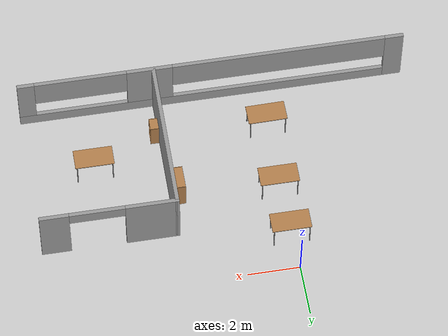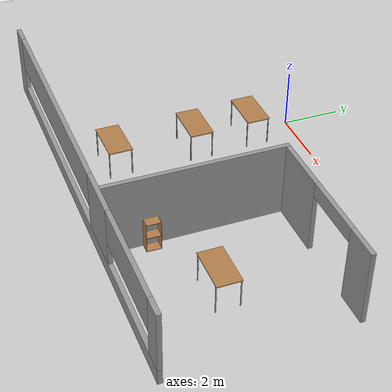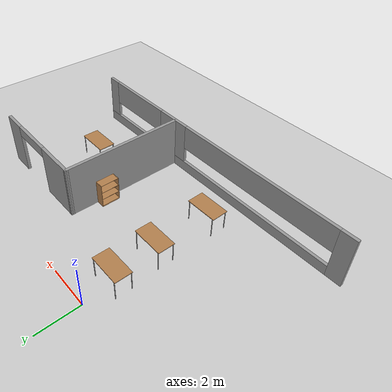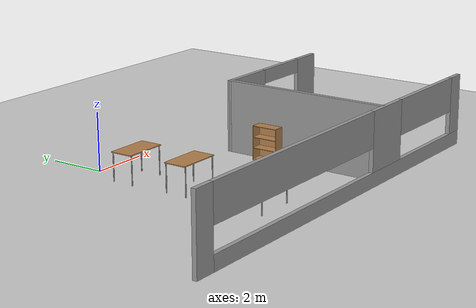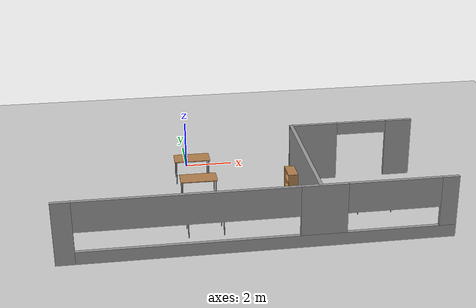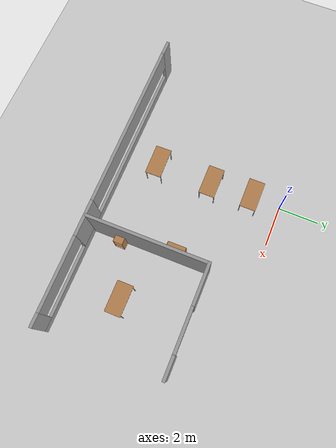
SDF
<sdf version="1.6">
 <world name="default">
  <model name="ground_plane">
   <static>1</static>
   <link name="link">
    <collision name="collision">
     <geometry><plane><normal>0 0 1</normal><size>100 100</size></plane></geometry>
     <surface>
      <contact><collide_bitmask>65535</collide_bitmask></contact>
      <friction><ode><mu>100</mu><mu2>50</mu2></ode></friction>
     </surface>
    </collision>
    <visual name="visual">
     <cast_shadows>0</cast_shadows>
     <geometry><plane><normal>0 0 1</normal><size>100 100</size></plane></geometry>
     <material>
      <script><uri>file://media/materials/scripts/gazebo.material</uri><name>Gazebo/Grey</name></script>
     </material>
    </visual>
   </link>
  </model>
  <model name="my_office">
   <link name="Wall_0">
    <pose>1.79825 -7.84466 0 0 -0 0.001173</pose>
    <visual name="Wall_0_Visual_5">
     <pose>5.04846 0 1.9 0 -0 0</pose>
     <geometry><box><size>3.55344 0.15 1.2</size></box></geometry>
     <material>
      <script><uri>file://media/materials/scripts/gazebo.material</uri><name>Gazebo/Grey</name></script>
      <ambient>1 1 1 1</ambient>
      <shader type="pixel"/>
      <diffuse>0.7 0.7 0.7 1</diffuse>
      <specular>0.01 0.01 0.01 1</specular>
      <emissive>0 0 0 1</emissive>
     </material>
     <meta><layer>0</layer></meta>
    </visual>
    <visual name="Wall_0_Visual_1">
     <pose>0.362663 0 0.25 0 -0 0</pose>
     <geometry><box><size>14.2481 0.15 0.5</size></box></geometry>
     <material>
      <script><uri>file://media/materials/scripts/gazebo.material</uri><name>Gazebo/Grey</name></script>
      <ambient>1 1 1 1</ambient>
      <shader type="pixel"/>
      <diffuse>0.7 0.7 0.7 1</diffuse>
      <specular>0.01 0.01 0.01 1</specular>
      <emissive>0 0 0 1</emissive>
     </material>
     <meta><layer>0</layer></meta>
    </visual>
    <visual name="Wall_0_Visual_4">
     <pose>-2.62937 0 1.9 0 -0 0</pose>
     <geometry><box><size>8.26401 0.15 1.2</size></box></geometry>
     <material>
      <script><uri>file://media/materials/scripts/gazebo.material</uri><name>Gazebo/Grey</name></script>
      <ambient>1 1 1 1</ambient>
      <shader type="pixel"/>
      <diffuse>0.7 0.7 0.7 1</diffuse>
      <specular>0.01 0.01 0.01 1</specular>
      <emissive>0 0 0 1</emissive>
     </material>
     <meta><layer>0</layer></meta>
    </visual>
    <visual name="Wall_0_Visual_3">
     <pose>7.15595 0 1.5 0 -0 0</pose>
     <geometry><box><size>0.66152 0.15 2</size></box></geometry>
     <material>
      <script><uri>file://media/materials/scripts/gazebo.material</uri><name>Gazebo/Grey</name></script>
      <ambient>1 1 1 1</ambient>
      <shader type="pixel"/>
      <diffuse>0.7 0.7 0.7 1</diffuse>
      <specular>0.01 0.01 0.01 1</specular>
      <emissive>0 0 0 1</emissive>
     </material>
     <meta><layer>0</layer></meta>
    </visual>
    <visual name="Wall_0_Visual_0">
     <pose>-7.12404 0 1.25 0 -0 0</pose>
     <geometry><box><size>0.725327 0.15 2.5</size></box></geometry>
     <material>
      <script><uri>file://media/materials/scripts/gazebo.material</uri><name>Gazebo/Grey</name></script>
      <ambient>1 1 1 1</ambient>
      <shader type="pixel"/>
      <diffuse>0.7 0.7 0.7 1</diffuse>
      <specular>0.01 0.01 0.01 1</specular>
      <emissive>0 0 0 1</emissive>
     </material>
     <meta><layer>0</layer></meta>
    </visual>
    <visual name="Wall_0_Visual_2">
     <pose>2.38719 0 1.5 0 -0 0</pose>
     <geometry><box><size>1.76911 0.15 2</size></box></geometry>
     <material>
      <script><uri>file://media/materials/scripts/gazebo.material</uri><name>Gazebo/Grey</name></script>
      <ambient>1 1 1 1</ambient>
      <shader type="pixel"/>
      <diffuse>0.7 0.7 0.7 1</diffuse>
      <specular>0.01 0.01 0.01 1</specular>
      <emissive>0 0 0 1</emissive>
     </material>
     <meta><layer>0</layer></meta>
    </visual>
    <collision name="Wall_0_Collision_2">
     <pose>2.38719 0 1.5 0 -0 0</pose>
     <geometry><box><size>1.76911 0.15 2</size></box></geometry>
     <surface>
      <friction>
       <ode><mu>1</mu><mu2>1</mu2><fdir1>0 0 0</fdir1><slip1>0</slip1><slip2>0</slip2></ode>
       <torsional>
        <coefficient>1</coefficient>
        <patch_radius>0</patch_radius>
        <surface_radius>0</surface_radius>
        <use_patch_radius>1</use_patch_radius>
        <ode><slip>0</slip></ode>
       </torsional>
      </friction>
      <bounce><restitution_coefficient>0</restitution_coefficient><threshold>1e+06</threshold></bounce>
      <contact>
       <collide_without_contact>0</collide_without_contact>
       <collide_without_contact_bitmask>1</collide_without_contact_bitmask>
       <collide_bitmask>1</collide_bitmask>
       <ode>
        <soft_cfm>0</soft_cfm>
        <soft_erp>0.2</soft_erp>
        <kp>1e+13</kp>
        <kd>1</kd>
        <max_vel>0.01</max_vel>
        <min_depth>0</min_depth>
       </ode>
       <bullet>
        <split_impulse>1</split_impulse>
        <split_impulse_penetration_threshold>-0.01</split_impulse_penetration_threshold>
        <soft_cfm>0</soft_cfm>
        <soft_erp>0.2</soft_erp>
        <kp>1e+13</kp>
        <kd>1</kd>
       </bullet>
      </contact>
     </surface>
    </collision>
    <collision name="Wall_0_Collision_3">
     <pose>7.15595 0 1.5 0 -0 0</pose>
     <geometry><box><size>0.66152 0.15 2</size></box></geometry>
     <surface>
      <friction>
       <ode><mu>1</mu><mu2>1</mu2><fdir1>0 0 0</fdir1><slip1>0</slip1><slip2>0</slip2></ode>
       <torsional>
        <coefficient>1</coefficient>
        <patch_radius>0</patch_radius>
        <surface_radius>0</surface_radius>
        <use_patch_radius>1</use_patch_radius>
        <ode><slip>0</slip></ode>
       </torsional>
      </friction>
      <bounce><restitution_coefficient>0</restitution_coefficient><threshold>1e+06</threshold></bounce>
      <contact>
       <collide_without_contact>0</collide_without_contact>
       <collide_without_contact_bitmask>1</collide_without_contact_bitmask>
       <collide_bitmask>1</collide_bitmask>
       <ode>
        <soft_cfm>0</soft_cfm>
        <soft_erp>0.2</soft_erp>
        <kp>1e+13</kp>
        <kd>1</kd>
        <max_vel>0.01</max_vel>
        <min_depth>0</min_depth>
       </ode>
       <bullet>
        <split_impulse>1</split_impulse>
        <split_impulse_penetration_threshold>-0.01</split_impulse_penetration_threshold>
        <soft_cfm>0</soft_cfm>
        <soft_erp>0.2</soft_erp>
        <kp>1e+13</kp>
        <kd>1</kd>
       </bullet>
      </contact>
     </surface>
    </collision>
    <collision name="Wall_0_Collision_0">
     <pose>-7.12404 0 1.25 0 -0 0</pose>
     <geometry><box><size>0.725327 0.15 2.5</size></box></geometry>
     <surface>
      <friction>
       <ode><mu>1</mu><mu2>1</mu2><fdir1>0 0 0</fdir1><slip1>0</slip1><slip2>0</slip2></ode>
       <torsional>
        <coefficient>1</coefficient>
        <patch_radius>0</patch_radius>
        <surface_radius>0</surface_radius>
        <use_patch_radius>1</use_patch_radius>
        <ode><slip>0</slip></ode>
       </torsional>
      </friction>
      <bounce><restitution_coefficient>0</restitution_coefficient><threshold>1e+06</threshold></bounce>
      <contact>
       <collide_without_contact>0</collide_without_contact>
       <collide_without_contact_bitmask>1</collide_without_contact_bitmask>
       <collide_bitmask>1</collide_bitmask>
       <ode>
        <soft_cfm>0</soft_cfm>
        <soft_erp>0.2</soft_erp>
        <kp>1e+13</kp>
        <kd>1</kd>
        <max_vel>0.01</max_vel>
        <min_depth>0</min_depth>
       </ode>
       <bullet>
        <split_impulse>1</split_impulse>
        <split_impulse_penetration_threshold>-0.01</split_impulse_penetration_threshold>
        <soft_cfm>0</soft_cfm>
        <soft_erp>0.2</soft_erp>
        <kp>1e+13</kp>
        <kd>1</kd>
       </bullet>
      </contact>
     </surface>
    </collision>
    <collision name="Wall_0_Collision_1">
     <pose>0.362663 0 0.25 0 -0 0</pose>
     <geometry><box><size>14.2481 0.15 0.5</size></box></geometry>
     <surface>
      <friction>
       <ode><mu>1</mu><mu2>1</mu2><fdir1>0 0 0</fdir1><slip1>0</slip1><slip2>0</slip2></ode>
       <torsional>
        <coefficient>1</coefficient>
        <patch_radius>0</patch_radius>
        <surface_radius>0</surface_radius>
        <use_patch_radius>1</use_patch_radius>
        <ode><slip>0</slip></ode>
       </torsional>
      </friction>
      <bounce><restitution_coefficient>0</restitution_coefficient><threshold>1e+06</threshold></bounce>
      <contact>
       <collide_without_contact>0</collide_without_contact>
       <collide_without_contact_bitmask>1</collide_without_contact_bitmask>
       <collide_bitmask>1</collide_bitmask>
       <ode>
        <soft_cfm>0</soft_cfm>
        <soft_erp>0.2</soft_erp>
        <kp>1e+13</kp>
        <kd>1</kd>
        <max_vel>0.01</max_vel>
        <min_depth>0</min_depth>
       </ode>
       <bullet>
        <split_impulse>1</split_impulse>
        <split_impulse_penetration_threshold>-0.01</split_impulse_penetration_threshold>
        <soft_cfm>0</soft_cfm>
        <soft_erp>0.2</soft_erp>
        <kp>1e+13</kp>
        <kd>1</kd>
       </bullet>
      </contact>
     </surface>
    </collision>
    <collision name="Wall_0_Collision_4">
     <pose>-2.62937 0 1.9 0 -0 0</pose>
     <geometry><box><size>8.26401 0.15 1.2</size></box></geometry>
     <surface>
      <friction>
       <ode><mu>1</mu><mu2>1</mu2><fdir1>0 0 0</fdir1><slip1>0</slip1><slip2>0</slip2></ode>
       <torsional>
        <coefficient>1</coefficient>
        <patch_radius>0</patch_radius>
        <surface_radius>0</surface_radius>
        <use_patch_radius>1</use_patch_radius>
        <ode><slip>0</slip></ode>
       </torsional>
      </friction>
      <bounce><restitution_coefficient>0</restitution_coefficient><threshold>1e+06</threshold></bounce>
      <contact>
       <collide_without_contact>0</collide_without_contact>
       <collide_without_contact_bitmask>1</collide_without_contact_bitmask>
       <collide_bitmask>1</collide_bitmask>
       <ode>
        <soft_cfm>0</soft_cfm>
        <soft_erp>0.2</soft_erp>
        <kp>1e+13</kp>
        <kd>1</kd>
        <max_vel>0.01</max_vel>
        <min_depth>0</min_depth>
       </ode>
       <bullet>
        <split_impulse>1</split_impulse>
        <split_impulse_penetration_threshold>-0.01</split_impulse_penetration_threshold>
        <soft_cfm>0</soft_cfm>
        <soft_erp>0.2</soft_erp>
        <kp>1e+13</kp>
        <kd>1</kd>
       </bullet>
      </contact>
     </surface>
    </collision>
    <collision name="Wall_0_Collision_5">
     <pose>5.04846 0 1.9 0 -0 0</pose>
     <geometry><box><size>3.55344 0.15 1.2</size></box></geometry>
     <surface>
      <friction>
       <ode><mu>1</mu><mu2>1</mu2><fdir1>0 0 0</fdir1><slip1>0</slip1><slip2>0</slip2></ode>
       <torsional>
        <coefficient>1</coefficient>
        <patch_radius>0</patch_radius>
        <surface_radius>0</surface_radius>
        <use_patch_radius>1</use_patch_radius>
        <ode><slip>0</slip></ode>
       </torsional>
      </friction>
      <bounce><restitution_coefficient>0</restitution_coefficient><threshold>1e+06</threshold></bounce>
      <contact>
       <collide_without_contact>0</collide_without_contact>
       <collide_without_contact_bitmask>1</collide_without_contact_bitmask>
       <collide_bitmask>1</collide_bitmask>
       <ode>
        <soft_cfm>0</soft_cfm>
        <soft_erp>0.2</soft_erp>
        <kp>1e+13</kp>
        <kd>1</kd>
        <max_vel>0.01</max_vel>
        <min_depth>0</min_depth>
       </ode>
       <bullet>
        <split_impulse>1</split_impulse>
        <split_impulse_penetration_threshold>-0.01</split_impulse_penetration_threshold>
        <soft_cfm>0</soft_cfm>
        <soft_erp>0.2</soft_erp>
        <kp>1e+13</kp>
        <kd>1</kd>
       </bullet>
      </contact>
     </surface>
    </collision>
   </link>
   <link name="Wall_2">
    <pose>6.57555 -1.92036 0 0 -0 3.14159</pose>
    <visual name="Wall_2_Visual_2">
     <pose>-0.453224 0 2.25 0 -0 0</pose>
     <geometry><box><size>2.1 0.15 0.5</size></box></geometry>
     <material>
      <script><uri>file://media/materials/scripts/gazebo.material</uri><name>Gazebo/Grey</name></script>
      <ambient>1 1 1 1</ambient>
      <shader type="pixel"/>
      <diffuse>0.7 0.7 0.7 1</diffuse>
      <specular>0.01 0.01 0.01 1</specular>
      <emissive>0 0 0 1</emissive>
     </material>
     <meta><layer>0</layer></meta>
    </visual>
    <visual name="Wall_2_Visual_1">
     <pose>1.61089 0 1.25 0 -0 0</pose>
     <geometry><box><size>2.02822 0.15 2.5</size></box></geometry>
     <material>
      <script><uri>file://media/materials/scripts/gazebo.material</uri><name>Gazebo/Grey</name></script>
      <ambient>1 1 1 1</ambient>
      <shader type="pixel"/>
      <diffuse>0.7 0.7 0.7 1</diffuse>
      <specular>0.01 0.01 0.01 1</specular>
      <emissive>0 0 0 1</emissive>
     </material>
     <meta><layer>0</layer></meta>
    </visual>
    <visual name="Wall_2_Visual_0">
     <pose>-2.06411 0 1.25 0 -0 0</pose>
     <geometry><box><size>1.12178 0.15 2.5</size></box></geometry>
     <material>
      <script><uri>file://media/materials/scripts/gazebo.material</uri><name>Gazebo/Grey</name></script>
      <ambient>1 1 1 1</ambient>
      <shader type="pixel"/>
      <diffuse>0.7 0.7 0.7 1</diffuse>
      <specular>0.01 0.01 0.01 1</specular>
      <emissive>0 0 0 1</emissive>
     </material>
     <meta><layer>0</layer></meta>
    </visual>
    <collision name="Wall_2_Collision_1">
     <pose>1.61089 0 1.25 0 -0 0</pose>
     <geometry><box><size>2.02822 0.15 2.5</size></box></geometry>
     <surface>
      <friction>
       <ode><mu>1</mu><mu2>1</mu2><fdir1>0 0 0</fdir1><slip1>0</slip1><slip2>0</slip2></ode>
       <torsional>
        <coefficient>1</coefficient>
        <patch_radius>0</patch_radius>
        <surface_radius>0</surface_radius>
        <use_patch_radius>1</use_patch_radius>
        <ode><slip>0</slip></ode>
       </torsional>
      </friction>
      <bounce><restitution_coefficient>0</restitution_coefficient><threshold>1e+06</threshold></bounce>
      <contact>
       <collide_without_contact>0</collide_without_contact>
       <collide_without_contact_bitmask>1</collide_without_contact_bitmask>
       <collide_bitmask>1</collide_bitmask>
       <ode>
        <soft_cfm>0</soft_cfm>
        <soft_erp>0.2</soft_erp>
        <kp>1e+13</kp>
        <kd>1</kd>
        <max_vel>0.01</max_vel>
        <min_depth>0</min_depth>
       </ode>
       <bullet>
        <split_impulse>1</split_impulse>
        <split_impulse_penetration_threshold>-0.01</split_impulse_penetration_threshold>
        <soft_cfm>0</soft_cfm>
        <soft_erp>0.2</soft_erp>
        <kp>1e+13</kp>
        <kd>1</kd>
       </bullet>
      </contact>
     </surface>
    </collision>
    <collision name="Wall_2_Collision_0">
     <pose>-2.06411 0 1.25 0 -0 0</pose>
     <geometry><box><size>1.12178 0.15 2.5</size></box></geometry>
     <surface>
      <friction>
       <ode><mu>1</mu><mu2>1</mu2><fdir1>0 0 0</fdir1><slip1>0</slip1><slip2>0</slip2></ode>
       <torsional>
        <coefficient>1</coefficient>
        <patch_radius>0</patch_radius>
        <surface_radius>0</surface_radius>
        <use_patch_radius>1</use_patch_radius>
        <ode><slip>0</slip></ode>
       </torsional>
      </friction>
      <bounce><restitution_coefficient>0</restitution_coefficient><threshold>1e+06</threshold></bounce>
      <contact>
       <collide_without_contact>0</collide_without_contact>
       <collide_without_contact_bitmask>1</collide_without_contact_bitmask>
       <collide_bitmask>1</collide_bitmask>
       <ode>
        <soft_cfm>0</soft_cfm>
        <soft_erp>0.2</soft_erp>
        <kp>1e+13</kp>
        <kd>1</kd>
        <max_vel>0.01</max_vel>
        <min_depth>0</min_depth>
       </ode>
       <bullet>
        <split_impulse>1</split_impulse>
        <split_impulse_penetration_threshold>-0.01</split_impulse_penetration_threshold>
        <soft_cfm>0</soft_cfm>
        <soft_erp>0.2</soft_erp>
        <kp>1e+13</kp>
        <kd>1</kd>
       </bullet>
      </contact>
     </surface>
    </collision>
    <collision name="Wall_2_Collision_2">
     <pose>-0.453224 0 2.25 0 -0 0</pose>
     <geometry><box><size>2.1 0.15 0.5</size></box></geometry>
     <surface>
      <friction>
       <ode><mu>1</mu><mu2>1</mu2><fdir1>0 0 0</fdir1><slip1>0</slip1><slip2>0</slip2></ode>
       <torsional>
        <coefficient>1</coefficient>
        <patch_radius>0</patch_radius>
        <surface_radius>0</surface_radius>
        <use_patch_radius>1</use_patch_radius>
        <ode><slip>0</slip></ode>
       </torsional>
      </friction>
      <bounce><restitution_coefficient>0</restitution_coefficient><threshold>1e+06</threshold></bounce>
      <contact>
       <collide_without_contact>0</collide_without_contact>
       <collide_without_contact_bitmask>1</collide_without_contact_bitmask>
       <collide_bitmask>1</collide_bitmask>
       <ode>
        <soft_cfm>0</soft_cfm>
        <soft_erp>0.2</soft_erp>
        <kp>1e+13</kp>
        <kd>1</kd>
        <max_vel>0.01</max_vel>
        <min_depth>0</min_depth>
       </ode>
       <bullet>
        <split_impulse>1</split_impulse>
        <split_impulse_penetration_threshold>-0.01</split_impulse_penetration_threshold>
        <soft_cfm>0</soft_cfm>
        <soft_erp>0.2</soft_erp>
        <kp>1e+13</kp>
        <kd>1</kd>
       </bullet>
      </contact>
     </surface>
    </collision>
   </link>
   <link name="Wall_3">
    <pose>4.03125 -4.84539 0 0 0 -1.56885</pose>
    <visual name="Wall_3_Visual">
     <pose>0 0 1.25 0 -0 0</pose>
     <geometry><box><size>6 0.15 2.5</size></box></geometry>
     <material>
      <script><uri>file://media/materials/scripts/gazebo.material</uri><name>Gazebo/Grey</name></script>
      <ambient>1 1 1 1</ambient>
      <shader type="pixel"/>
      <diffuse>0.7 0.7 0.7 1</diffuse>
      <specular>0.01 0.01 0.01 1</specular>
      <emissive>0 0 0 1</emissive>
     </material>
     <meta><layer>0</layer></meta>
    </visual>
    <collision name="Wall_3_Collision">
     <pose>0 0 1.25 0 -0 0</pose>
     <geometry><box><size>6 0.15 2.5</size></box></geometry>
     <surface>
      <friction>
       <ode><mu>1</mu><mu2>1</mu2><fdir1>0 0 0</fdir1><slip1>0</slip1><slip2>0</slip2></ode>
       <torsional>
        <coefficient>1</coefficient>
        <patch_radius>0</patch_radius>
        <surface_radius>0</surface_radius>
        <use_patch_radius>1</use_patch_radius>
        <ode><slip>0</slip></ode>
       </torsional>
      </friction>
      <bounce><restitution_coefficient>0</restitution_coefficient><threshold>1e+06</threshold></bounce>
      <contact>
       <collide_without_contact>0</collide_without_contact>
       <collide_without_contact_bitmask>1</collide_without_contact_bitmask>
       <collide_bitmask>1</collide_bitmask>
       <ode>
        <soft_cfm>0</soft_cfm>
        <soft_erp>0.2</soft_erp>
        <kp>1e+13</kp>
        <kd>1</kd>
        <max_vel>0.01</max_vel>
        <min_depth>0</min_depth>
       </ode>
       <bullet>
        <split_impulse>1</split_impulse>
        <split_impulse_penetration_threshold>-0.01</split_impulse_penetration_threshold>
        <soft_cfm>0</soft_cfm>
        <soft_erp>0.2</soft_erp>
        <kp>1e+13</kp>
        <kd>1</kd>
       </bullet>
      </contact>
     </surface>
    </collision>
   </link>
   <static>1</static>
   <pose>0.28622 -0.24385 0 0 -0 0</pose>
  </model>
  <model name="table_0">
   <static>1</static>
   <link name="link">
    <collision name="surface">
     <pose>0 0 1 0 -0 0</pose>
     <geometry><box><size>1.5 0.8 0.03</size></box></geometry>
     <surface><friction><ode><mu>0.6</mu><mu2>0.6</mu2></ode></friction></surface>
    </collision>
    <visual name="visual1">
     <pose>0 0 1 0 -0 0</pose>
     <geometry><box><size>1.5 0.8 0.03</size></box></geometry>
     <material>
      <script><uri>file://media/materials/scripts/gazebo.material</uri><name>Gazebo/Wood</name></script>
     </material>
    </visual>
    <collision name="front_left_leg">
     <pose>0.68 0.38 0.5 0 -0 0</pose>
     <geometry><cylinder><radius>0.02</radius><length>1</length></cylinder></geometry>
    </collision>
    <visual name="front_left_leg">
     <pose>0.68 0.38 0.5 0 -0 0</pose>
     <geometry><cylinder><radius>0.02</radius><length>1</length></cylinder></geometry>
     <material>
      <script><uri>file://media/materials/scripts/gazebo.material</uri><name>Gazebo/Grey</name></script>
     </material>
    </visual>
    <collision name="front_right_leg">
     <pose>0.68 -0.38 0.5 0 -0 0</pose>
     <geometry><cylinder><radius>0.02</radius><length>1</length></cylinder></geometry>
    </collision>
    <visual name="front_right_leg">
     <pose>0.68 -0.38 0.5 0 -0 0</pose>
     <geometry><cylinder><radius>0.02</radius><length>1</length></cylinder></geometry>
     <material>
      <script><uri>file://media/materials/scripts/gazebo.material</uri><name>Gazebo/Grey</name></script>
     </material>
    </visual>
    <collision name="back_right_leg">
     <pose>-0.68 -0.38 0.5 0 -0 0</pose>
     <geometry><cylinder><radius>0.02</radius><length>1</length></cylinder></geometry>
    </collision>
    <visual name="back_right_leg">
     <pose>-0.68 -0.38 0.5 0 -0 0</pose>
     <geometry><cylinder><radius>0.02</radius><length>1</length></cylinder></geometry>
     <material>
      <script><uri>file://media/materials/scripts/gazebo.material</uri><name>Gazebo/Grey</name></script>
     </material>
    </visual>
    <collision name="back_left_leg">
     <pose>-0.68 0.38 0.5 0 -0 0</pose>
     <geometry><cylinder><radius>0.02</radius><length>1</length></cylinder></geometry>
    </collision>
    <visual name="back_left_leg">
     <pose>-0.68 0.38 0.5 0 -0 0</pose>
     <geometry><cylinder><radius>0.02</radius><length>1</length></cylinder></geometry>
     <material>
      <script><uri>file://media/materials/scripts/gazebo.material</uri><name>Gazebo/Grey</name></script>
     </material>
    </visual>
   </link>
   <pose>0.21059 -6.36802 0 0 -0 0.01526</pose>
  </model>
  <model name="cabinet">
   <static>1</static>
   <link name="cabinet_bottom_plate">
    <inertial>
     <pose>0 0 -1 0 -0 0</pose>
     <inertia><ixx>2.05</ixx><ixy>0</ixy><ixz>0</ixz><iyy>2.05</iyy><iyz>0</iyz><izz>2.05</izz></inertia>
     <mass>25</mass>
    </inertial>
    <collision name="cabinet_bottom_plate_geom">
     <pose>0 0 0.01 0 -0 0</pose>
     <geometry><box><size>0.45 0.45 0.02</size></box></geometry>
    </collision>
    <visual name="cabinet_bottom_plate_geom_visual">
     <pose>0 0 0.01 0 -0 0</pose>
     <geometry><box><size>0.45 0.45 0.02</size></box></geometry>
     <material>
      <script><uri>file://media/materials/scripts/gazebo.material</uri><name>Gazebo/Wood</name></script>
     </material>
    </visual>
    <collision name="cabinet_bottom_plate_geom_cabinet_back_plate">
     <pose>0.235 0 0.51 0 -0 0</pose>
     <geometry><box><size>0.02 0.45 1.02</size></box></geometry>
    </collision>
    <visual name="cabinet_bottom_plate_geom_cabinet_back_plate_visual">
     <pose>0.235 0 0.51 0 -0 0</pose>
     <geometry><box><size>0.02 0.45 1.02</size></box></geometry>
     <material>
      <script><uri>file://media/materials/scripts/gazebo.material</uri><name>Gazebo/Wood</name></script>
     </material>
    </visual>
    <collision name="cabinet_bottom_plate_geom_cabinet_left_plate">
     <pose>0 0.235 0.51 0 -0 0</pose>
     <geometry><box><size>0.45 0.02 1.02</size></box></geometry>
    </collision>
    <visual name="cabinet_bottom_plate_geom_cabinet_left_plate_visual">
     <pose>0 0.235 0.51 0 -0 0</pose>
     <geometry><box><size>0.45 0.02 1.02</size></box></geometry>
     <material>
      <script><uri>file://media/materials/scripts/gazebo.material</uri><name>Gazebo/Wood</name></script>
     </material>
    </visual>
    <collision name="cabinet_bottom_plate_geom_cabinet_middle_plate">
     <pose>0 0 0.51 0 -0 0</pose>
     <geometry><box><size>0.45 0.45 0.02</size></box></geometry>
    </collision>
    <visual name="cabinet_bottom_plate_geom_cabinet_middle_plate_visual">
     <pose>0 0 0.51 0 -0 0</pose>
     <geometry><box><size>0.45 0.45 0.02</size></box></geometry>
     <material>
      <script><uri>file://media/materials/scripts/gazebo.material</uri><name>Gazebo/Wood</name></script>
     </material>
    </visual>
    <collision name="cabinet_bottom_plate_geom_cabinet_right_plate">
     <pose>0 -0.235 0.51 0 -0 0</pose>
     <geometry><box><size>0.45 0.02 1.02</size></box></geometry>
    </collision>
    <visual name="cabinet_bottom_plate_geom_cabinet_right_plate_visual">
     <pose>0 -0.235 0.51 0 -0 0</pose>
     <geometry><box><size>0.45 0.02 1.02</size></box></geometry>
     <material>
      <script><uri>file://media/materials/scripts/gazebo.material</uri><name>Gazebo/Wood</name></script>
     </material>
    </visual>
    <collision name="cabinet_bottom_plate_geom_cabinet_top_plate">
     <pose>0 0 1.01 0 -0 0</pose>
     <geometry><box><size>0.45 0.45 0.02</size></box></geometry>
    </collision>
    <visual name="cabinet_bottom_plate_geom_cabinet_top_plate_visual">
     <pose>0 0 1.01 0 -0 0</pose>
     <geometry><box><size>0.45 0.45 0.02</size></box></geometry>
     <material>
      <script><uri>file://media/materials/scripts/gazebo.material</uri><name>Gazebo/Wood</name></script>
     </material>
    </visual>
   </link>
   <pose>4.49782 -6.54463 0 0 -0 3.12971</pose>
  </model>
  <model name="table">
   <static>1</static>
   <link name="link">
    <collision name="surface">
     <pose>0 0 1 0 -0 0</pose>
     <geometry><box><size>1.5 0.8 0.03</size></box></geometry>
     <surface><friction><ode><mu>0.6</mu><mu2>0.6</mu2></ode></friction></surface>
    </collision>
    <visual name="visual1">
     <pose>0 0 1 0 -0 0</pose>
     <geometry><box><size>1.5 0.8 0.03</size></box></geometry>
     <material>
      <script><uri>file://media/materials/scripts/gazebo.material</uri><name>Gazebo/Wood</name></script>
     </material>
    </visual>
    <collision name="front_left_leg">
     <pose>0.68 0.38 0.5 0 -0 0</pose>
     <geometry><cylinder><radius>0.02</radius><length>1</length></cylinder></geometry>
    </collision>
    <visual name="front_left_leg">
     <pose>0.68 0.38 0.5 0 -0 0</pose>
     <geometry><cylinder><radius>0.02</radius><length>1</length></cylinder></geometry>
     <material>
      <script><uri>file://media/materials/scripts/gazebo.material</uri><name>Gazebo/Grey</name></script>
     </material>
    </visual>
    <collision name="front_right_leg">
     <pose>0.68 -0.38 0.5 0 -0 0</pose>
     <geometry><cylinder><radius>0.02</radius><length>1</length></cylinder></geometry>
    </collision>
    <visual name="front_right_leg">
     <pose>0.68 -0.38 0.5 0 -0 0</pose>
     <geometry><cylinder><radius>0.02</radius><length>1</length></cylinder></geometry>
     <material>
      <script><uri>file://media/materials/scripts/gazebo.material</uri><name>Gazebo/Grey</name></script>
     </material>
    </visual>
    <collision name="back_right_leg">
     <pose>-0.68 -0.38 0.5 0 -0 0</pose>
     <geometry><cylinder><radius>0.02</radius><length>1</length></cylinder></geometry>
    </collision>
    <visual name="back_right_leg">
     <pose>-0.68 -0.38 0.5 0 -0 0</pose>
     <geometry><cylinder><radius>0.02</radius><length>1</length></cylinder></geometry>
     <material>
      <script><uri>file://media/materials/scripts/gazebo.material</uri><name>Gazebo/Grey</name></script>
     </material>
    </visual>
    <collision name="back_left_leg">
     <pose>-0.68 0.38 0.5 0 -0 0</pose>
     <geometry><cylinder><radius>0.02</radius><length>1</length></cylinder></geometry>
    </collision>
    <visual name="back_left_leg">
     <pose>-0.68 0.38 0.5 0 -0 0</pose>
     <geometry><cylinder><radius>0.02</radius><length>1</length></cylinder></geometry>
     <material>
      <script><uri>file://media/materials/scripts/gazebo.material</uri><name>Gazebo/Grey</name></script>
     </material>
    </visual>
   </link>
   <pose>0.228245 -3.54985 0 0 -0 0</pose>
  </model>
  <model name="table_1">
   <static>1</static>
   <link name="link">
    <collision name="surface">
     <pose>0 0 1 0 -0 0</pose>
     <geometry><box><size>1.5 0.8 0.03</size></box></geometry>
     <surface><friction><ode><mu>0.6</mu><mu2>0.6</mu2></ode></friction></surface>
    </collision>
    <visual name="visual1">
     <pose>0 0 1 0 -0 0</pose>
     <geometry><box><size>1.5 0.8 0.03</size></box></geometry>
     <material>
      <script><uri>file://media/materials/scripts/gazebo.material</uri><name>Gazebo/Wood</name></script>
     </material>
    </visual>
    <collision name="front_left_leg">
     <pose>0.68 0.38 0.5 0 -0 0</pose>
     <geometry><cylinder><radius>0.02</radius><length>1</length></cylinder></geometry>
    </collision>
    <visual name="front_left_leg">
     <pose>0.68 0.38 0.5 0 -0 0</pose>
     <geometry><cylinder><radius>0.02</radius><length>1</length></cylinder></geometry>
     <material>
      <script><uri>file://media/materials/scripts/gazebo.material</uri><name>Gazebo/Grey</name></script>
     </material>
    </visual>
    <collision name="front_right_leg">
     <pose>0.68 -0.38 0.5 0 -0 0</pose>
     <geometry><cylinder><radius>0.02</radius><length>1</length></cylinder></geometry>
    </collision>
    <visual name="front_right_leg">
     <pose>0.68 -0.38 0.5 0 -0 0</pose>
     <geometry><cylinder><radius>0.02</radius><length>1</length></cylinder></geometry>
     <material>
      <script><uri>file://media/materials/scripts/gazebo.material</uri><name>Gazebo/Grey</name></script>
     </material>
    </visual>
    <collision name="back_right_leg">
     <pose>-0.68 -0.38 0.5 0 -0 0</pose>
     <geometry><cylinder><radius>0.02</radius><length>1</length></cylinder></geometry>
    </collision>
    <visual name="back_right_leg">
     <pose>-0.68 -0.38 0.5 0 -0 0</pose>
     <geometry><cylinder><radius>0.02</radius><length>1</length></cylinder></geometry>
     <material>
      <script><uri>file://media/materials/scripts/gazebo.material</uri><name>Gazebo/Grey</name></script>
     </material>
    </visual>
    <collision name="back_left_leg">
     <pose>-0.68 0.38 0.5 0 -0 0</pose>
     <geometry><cylinder><radius>0.02</radius><length>1</length></cylinder></geometry>
    </collision>
    <visual name="back_left_leg">
     <pose>-0.68 0.38 0.5 0 -0 0</pose>
     <geometry><cylinder><radius>0.02</radius><length>1</length></cylinder></geometry>
     <material>
      <script><uri>file://media/materials/scripts/gazebo.material</uri><name>Gazebo/Grey</name></script>
     </material>
    </visual>
   </link>
   <pose>0.139804 -1.47795 0 0 -0 0</pose>
  </model>
  <model name="table_6">
   <static>1</static>
   <link name="link">
    <collision name="surface">
     <pose>0 0 1 0 -0 0</pose>
     <geometry><box><size>1.5 0.8 0.03</size></box></geometry>
     <surface><friction><ode><mu>0.6</mu><mu2>0.6</mu2></ode></friction></surface>
    </collision>
    <visual name="visual1">
     <pose>0 0 1 0 -0 0</pose>
     <geometry><box><size>1.5 0.8 0.03</size></box></geometry>
     <material>
      <script><uri>file://media/materials/scripts/gazebo.material</uri><name>Gazebo/Wood</name></script>
     </material>
    </visual>
    <collision name="front_left_leg">
     <pose>0.68 0.38 0.5 0 -0 0</pose>
     <geometry><cylinder><radius>0.02</radius><length>1</length></cylinder></geometry>
    </collision>
    <visual name="front_left_leg">
     <pose>0.68 0.38 0.5 0 -0 0</pose>
     <geometry><cylinder><radius>0.02</radius><length>1</length></cylinder></geometry>
     <material>
      <script><uri>file://media/materials/scripts/gazebo.material</uri><name>Gazebo/Grey</name></script>
     </material>
    </visual>
    <collision name="front_right_leg">
     <pose>0.68 -0.38 0.5 0 -0 0</pose>
     <geometry><cylinder><radius>0.02</radius><length>1</length></cylinder></geometry>
    </collision>
    <visual name="front_right_leg">
     <pose>0.68 -0.38 0.5 0 -0 0</pose>
     <geometry><cylinder><radius>0.02</radius><length>1</length></cylinder></geometry>
     <material>
      <script><uri>file://media/materials/scripts/gazebo.material</uri><name>Gazebo/Grey</name></script>
     </material>
    </visual>
    <collision name="back_right_leg">
     <pose>-0.68 -0.38 0.5 0 -0 0</pose>
     <geometry><cylinder><radius>0.02</radius><length>1</length></cylinder></geometry>
    </collision>
    <visual name="back_right_leg">
     <pose>-0.68 -0.38 0.5 0 -0 0</pose>
     <geometry><cylinder><radius>0.02</radius><length>1</length></cylinder></geometry>
     <material>
      <script><uri>file://media/materials/scripts/gazebo.material</uri><name>Gazebo/Grey</name></script>
     </material>
    </visual>
    <collision name="back_left_leg">
     <pose>-0.68 0.38 0.5 0 -0 0</pose>
     <geometry><cylinder><radius>0.02</radius><length>1</length></cylinder></geometry>
    </collision>
    <visual name="back_left_leg">
     <pose>-0.68 0.38 0.5 0 -0 0</pose>
     <geometry><cylinder><radius>0.02</radius><length>1</length></cylinder></geometry>
     <material>
      <script><uri>file://media/materials/scripts/gazebo.material</uri><name>Gazebo/Grey</name></script>
     </material>
    </visual>
   </link>
   <pose>7.03939 -5.42633 0 0 -0 0</pose>
  </model>
  <model name="bookshelf">
   <static>1</static>
   <link name="link">
    <inertial><mass>1</mass></inertial>
    <collision name="back">
     <pose>0 0.005 0.6 0 -0 0</pose>
     <geometry><box><size>0.9 0.01 1.2</size></box></geometry>
    </collision>
    <visual name="visual1">
     <pose>0 0.005 0.6 0 -0 0</pose>
     <geometry><box><size>0.9 0.01 1.2</size></box></geometry>
     <material>
      <script><uri>file://media/materials/scripts/gazebo.material</uri><name>Gazebo/Wood</name></script>
     </material>
    </visual>
    <collision name="left_side">
     <pose>0.45 -0.195 0.6 0 -0 0</pose>
     <geometry><box><size>0.02 0.4 1.2</size></box></geometry>
    </collision>
    <visual name="visual2">
     <pose>0.45 -0.195 0.6 0 -0 0</pose>
     <geometry><box><size>0.02 0.4 1.2</size></box></geometry>
     <material>
      <script><uri>file://media/materials/scripts/gazebo.material</uri><name>Gazebo/Wood</name></script>
     </material>
    </visual>
    <collision name="right_side">
     <pose>-0.45 -0.195 0.6 0 -0 0</pose>
     <geometry><box><size>0.02 0.4 1.2</size></box></geometry>
    </collision>
    <visual name="visual3">
     <pose>-0.45 -0.195 0.6 0 -0 0</pose>
     <geometry><box><size>0.02 0.4 1.2</size></box></geometry>
     <material>
      <script><uri>file://media/materials/scripts/gazebo.material</uri><name>Gazebo/Wood</name></script>
     </material>
    </visual>
    <collision name="bottom">
     <pose>0 -0.195 0.03 0 -0 0</pose>
     <geometry><box><size>0.88 0.4 0.06</size></box></geometry>
    </collision>
    <visual name="visual4">
     <pose>0 -0.195 0.03 0 -0 0</pose>
     <geometry><box><size>0.88 0.4 0.06</size></box></geometry>
     <material>
      <script><uri>file://media/materials/scripts/gazebo.material</uri><name>Gazebo/Wood</name></script>
     </material>
    </visual>
    <collision name="top">
     <pose>0 -0.195 1.19 0 -0 0</pose>
     <geometry><box><size>0.88 0.4 0.02</size></box></geometry>
    </collision>
    <visual name="visual5">
     <pose>0 -0.195 1.19 0 -0 0</pose>
     <geometry><box><size>0.88 0.4 0.02</size></box></geometry>
     <material>
      <script><uri>file://media/materials/scripts/gazebo.material</uri><name>Gazebo/Wood</name></script>
     </material>
    </visual>
    <collision name="low_shelf">
     <pose>0 -0.195 0.43 0 -0 0</pose>
     <geometry><box><size>0.88 0.4 0.02</size></box></geometry>
    </collision>
    <visual name="visual6">
     <pose>0 -0.195 0.43 0 -0 0</pose>
     <geometry><box><size>0.88 0.4 0.02</size></box></geometry>
     <material>
      <script><uri>file://media/materials/scripts/gazebo.material</uri><name>Gazebo/Wood</name></script>
     </material>
    </visual>
    <collision name="high_shelf">
     <pose>0 -0.195 0.8 0 -0 0</pose>
     <geometry><box><size>0.88 0.4 0.02</size></box></geometry>
    </collision>
    <visual name="visual7">
     <pose>0 -0.195 0.8 0 -0 0</pose>
     <geometry><box><size>0.88 0.4 0.02</size></box></geometry>
     <material>
      <script><uri>file://media/materials/scripts/gazebo.material</uri><name>Gazebo/Wood</name></script>
     </material>
    </visual>
   </link>
   <pose>4.19818 -3.89405 0.02834 0 0 -1.56303</pose>
  </model>
 </world>
</sdf>
